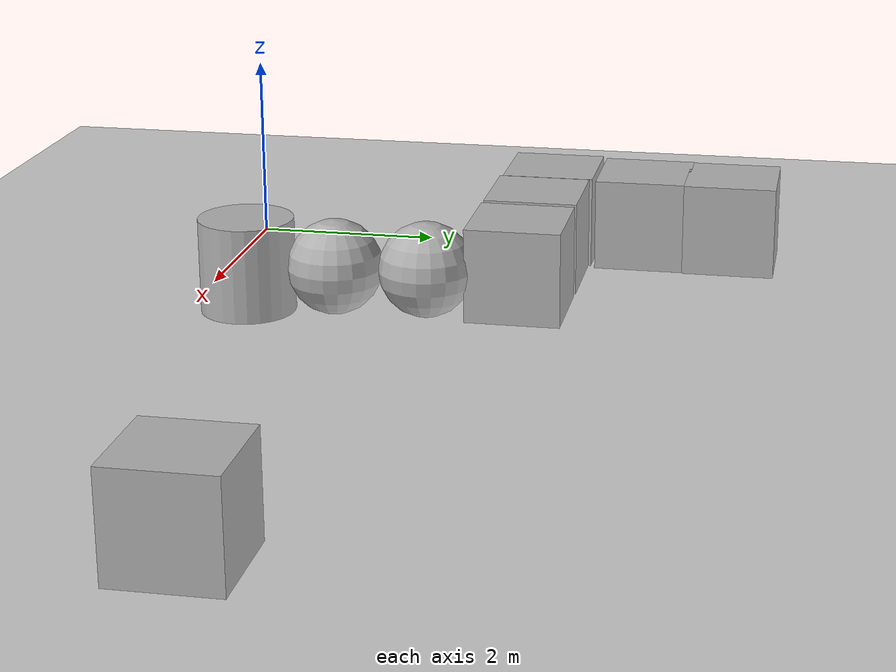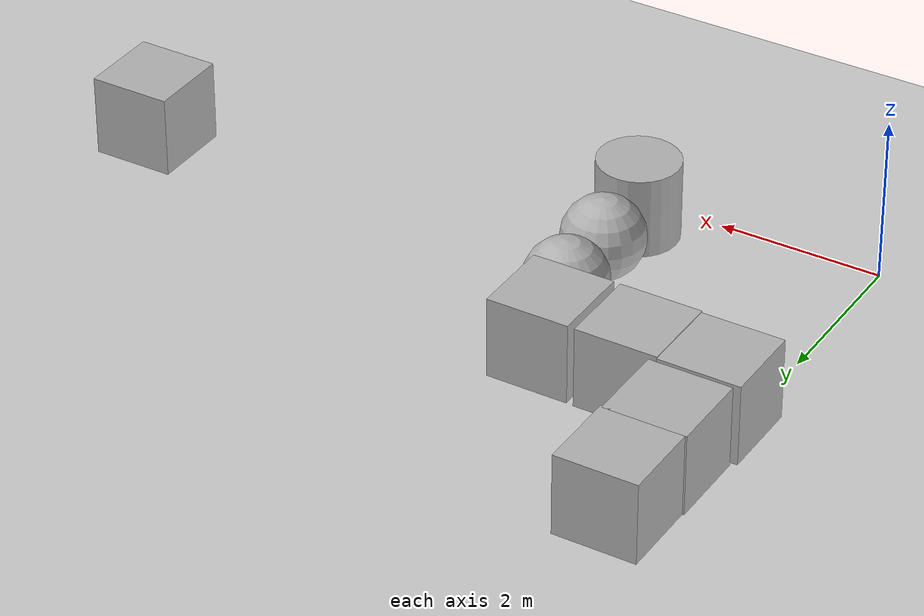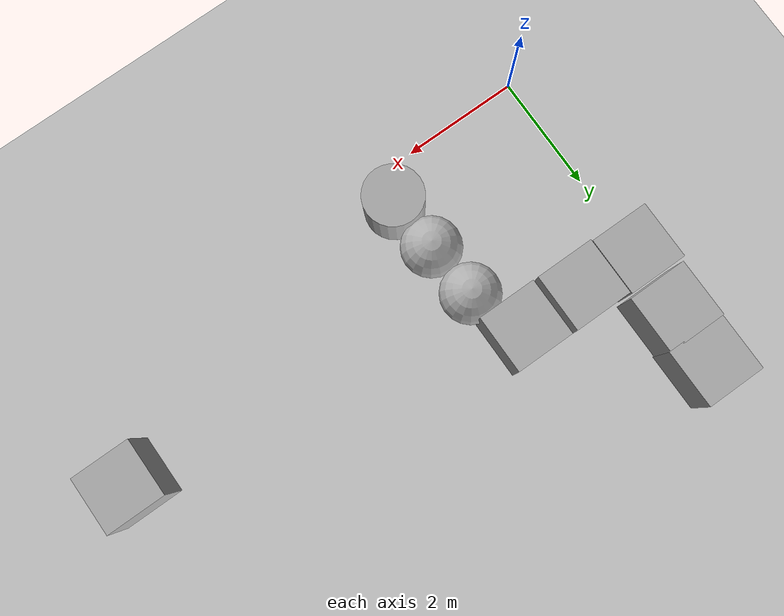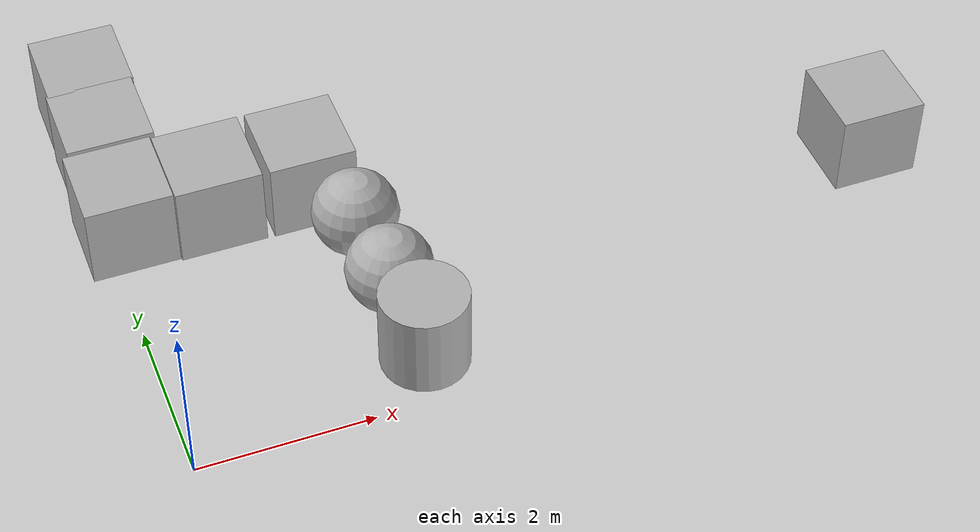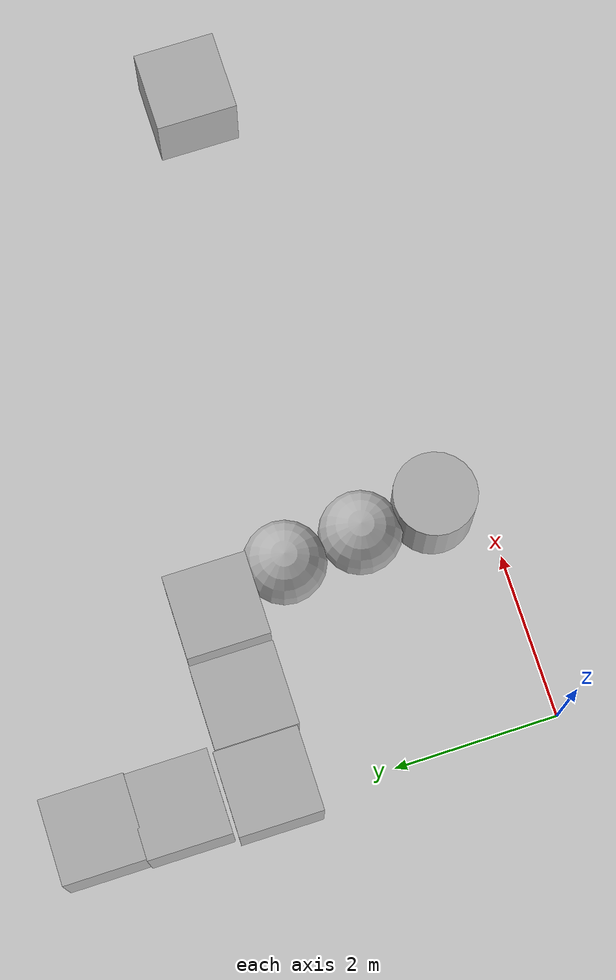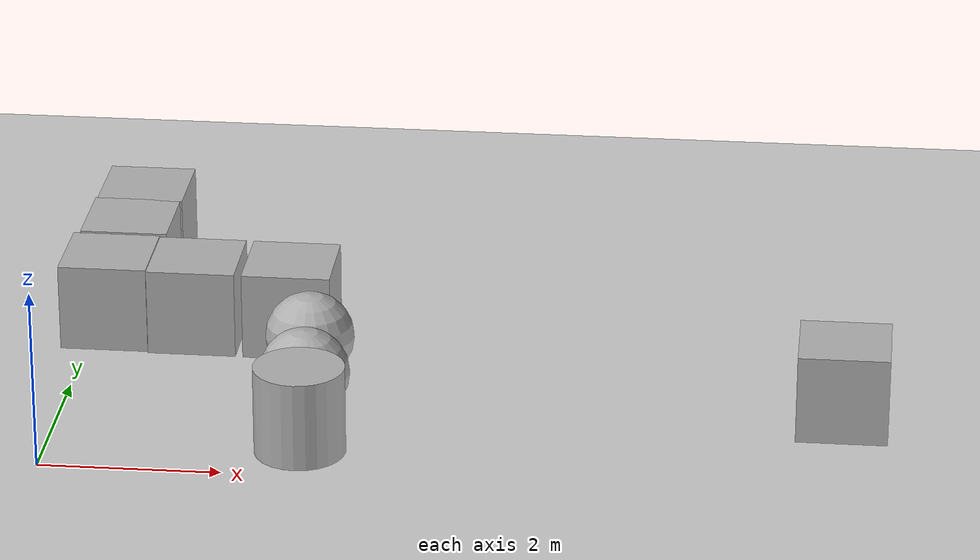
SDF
<sdf version='1.10'>
  <world name='empty'>
    <gui fullscreen="0">
      <plugin filename="KeyPublisher" name="Key Publisher"/>
    </gui>

  <!-- Movement triggers (example: Up Arrow) -->

    <physics name='1ms' type='ignored'>
      <max_step_size>0.001</max_step_size>
      <real_time_factor>1</real_time_factor>
      <real_time_update_rate>1000</real_time_update_rate>
    </physics>
    <plugin name='gz::sim::systems::Physics' filename='gz-sim-physics-system'/>
    <plugin name='gz::sim::systems::UserCommands' filename='gz-sim-user-commands-system'/>
    <plugin name='gz::sim::systems::SceneBroadcaster' filename='gz-sim-scene-broadcaster-system'/>
    <plugin name='gz::sim::systems::Contact' filename='gz-sim-contact-system'/>

    <gravity>0 0 -9.8000000000000007</gravity>
    <magnetic_field>5.5644999999999998e-06 2.2875799999999999e-05 -4.2388400000000002e-05</magnetic_field>
    <atmosphere type='adiabatic'/>
    <scene>
      <ambient>0.400000006 0.400000006 0.400000006 1</ambient>
      <background>0.699999988 0.699999988 0.699999988 1</background>
      <shadows>true</shadows>
    </scene>
    <model name='ground_plane'>
      <static>true</static>
      <link name='link'>
        <collision name='collision'>
          <geometry>
            <plane>
              <normal>0 0 1</normal>
              <size>100 100</size>
            </plane>
          </geometry>
          <surface>
            <friction>
              <ode/>
            </friction>
            <bounce/>
            <contact/>
          </surface>
        </collision>
        <visual name='visual'>
          <geometry>
            <plane>
              <normal>0 0 1</normal>
              <size>100 100</size>
            </plane>
          </geometry>
          <material>
            <ambient>0.800000012 0.800000012 0.800000012 1</ambient>
            <diffuse>0.800000012 0.800000012 0.800000012 1</diffuse>
            <specular>0.800000012 0.800000012 0.800000012 1</specular>
          </material>
        </visual>
        <pose>0 0 0 0 0 0</pose>
        <inertial>
          <pose>0 0 0 0 0 0</pose>
          <mass>1</mass>
          <inertia>
            <ixx>1</ixx>
            <ixy>0</ixy>
            <ixz>0</ixz>
            <iyy>1</iyy>
            <iyz>0</iyz>
            <izz>1</izz>
          </inertia>
        </inertial>
        <enable_wind>false</enable_wind>
      </link>
      <pose>0 0 0 0 0 0</pose>
      <self_collide>false</self_collide>
    </model>
    <model name='box'>
      <pose>0.28821133311123948 5.4884715846028032 0.5 0 0 0</pose>
      <link name='box_link'>
        <inertial>
          <inertia>
            <ixx>0.16666</ixx>
            <ixy>0</ixy>
            <ixz>0</ixz>
            <iyy>0.16666</iyy>
            <iyz>0</iyz>
            <izz>0.16666</izz>
          </inertia>
          <mass>1</mass>
          <pose>0 0 0 0 0 0</pose>
        </inertial>
        <collision name='box_collision'>
          <geometry>
            <box>
              <size>1 1 1</size>
            </box>
          </geometry>
          <surface>
            <friction>
              <ode/>
            </friction>
            <bounce/>
            <contact/>
          </surface>
        </collision>
        <visual name='box_visual'>
          <geometry>
            <box>
              <size>1 1 1</size>
            </box>
          </geometry>
          <material>
            <ambient>0.300000012 0.300000012 0.300000012 1</ambient>
            <diffuse>0.699999988 0.699999988 0.699999988 1</diffuse>
            <specular>1 1 1 1</specular>
          </material>
        </visual>
        <pose>0 0 0 0 0 0</pose>
        <enable_wind>false</enable_wind>
      </link>
      <static>false</static>
      <self_collide>false</self_collide>
    </model>
    <model name='box_0'>
      <pose>0.26720608104949495 4.5150865594517988 0.5 0 0 0</pose>
      <link name='box_link'>
        <inertial>
          <inertia>
            <ixx>0.16666</ixx>
            <ixy>0</ixy>
            <ixz>0</ixz>
            <iyy>0.16666</iyy>
            <iyz>0</iyz>
            <izz>0.16666</izz>
          </inertia>
          <mass>1</mass>
          <pose>0 0 0 0 0 0</pose>
        </inertial>
        <collision name='box_collision'>
          <geometry>
            <box>
              <size>1 1 1</size>
            </box>
          </geometry>
          <surface>
            <friction>
              <ode/>
            </friction>
            <bounce/>
            <contact/>
          </surface>
        </collision>
        <visual name='box_visual'>
          <geometry>
            <box>
              <size>1 1 1</size>
            </box>
          </geometry>
          <material>
            <ambient>0.300000012 0.300000012 0.300000012 1</ambient>
            <diffuse>0.699999988 0.699999988 0.699999988 1</diffuse>
            <specular>1 1 1 1</specular>
          </material>
        </visual>
        <pose>0 0 0 0 0 0</pose>
        <enable_wind>false</enable_wind>
      </link>
      <static>false</static>
      <self_collide>false</self_collide>
    </model>
    <model name='box_1'>
      <pose>0.20029204193367267 3.4662636286200028 0.5 0 0 0</pose>
      <link name='box_link'>
        <inertial>
          <inertia>
            <ixx>0.16666</ixx>
            <ixy>0</ixy>
            <ixz>0</ixz>
            <iyy>0.16666</iyy>
            <iyz>0</iyz>
            <izz>0.16666</izz>
          </inertia>
          <mass>1</mass>
          <pose>0 0 0 0 0 0</pose>
        </inertial>
        <collision name='box_collision'>
          <geometry>
            <box>
              <size>1 1 1</size>
            </box>
          </geometry>
          <surface>
            <friction>
              <ode/>
            </friction>
            <bounce/>
            <contact/>
          </surface>
        </collision>
        <visual name='box_visual'>
          <geometry>
            <box>
              <size>1 1 1</size>
            </box>
          </geometry>
          <material>
            <ambient>0.300000012 0.300000012 0.300000012 1</ambient>
            <diffuse>0.699999988 0.699999988 0.699999988 1</diffuse>
            <specular>1 1 1 1</specular>
          </material>
        </visual>
        <pose>0 0 0 0 0 0</pose>
        <enable_wind>false</enable_wind>
      </link>
      <static>false</static>
      <self_collide>false</self_collide>
    </model>
    <model name='box_2'>
      <pose>1.208863190612119 3.4366423428451744 0.5 0 0 0</pose>
      <link name='box_link'>
        <inertial>
          <inertia>
            <ixx>0.16666</ixx>
            <ixy>0</ixy>
            <ixz>0</ixz>
            <iyy>0.16666</iyy>
            <iyz>0</iyz>
            <izz>0.16666</izz>
          </inertia>
          <mass>1</mass>
          <pose>0 0 0 0 0 0</pose>
        </inertial>
        <collision name='box_collision'>
          <geometry>
            <box>
              <size>1 1 1</size>
            </box>
          </geometry>
          <surface>
            <friction>
              <ode/>
            </friction>
            <bounce/>
            <contact/>
          </surface>
        </collision>
        <visual name='box_visual'>
          <geometry>
            <box>
              <size>1 1 1</size>
            </box>
          </geometry>
          <material>
            <ambient>0.300000012 0.300000012 0.300000012 1</ambient>
            <diffuse>0.699999988 0.699999988 0.699999988 1</diffuse>
            <specular>1 1 1 1</specular>
          </material>
        </visual>
        <pose>0 0 0 0 0 0</pose>
        <enable_wind>false</enable_wind>
      </link>
      <static>false</static>
      <self_collide>false</self_collide>
    </model>
    <model name='box_3'>
      <pose>2.2932777128885764 3.4294730661812629 0.5 0 0 0</pose>
      <link name='box_link'>
        <inertial>
          <inertia>
            <ixx>0.16666</ixx>
            <ixy>0</ixy>
            <ixz>0</ixz>
            <iyy>0.16666</iyy>
            <iyz>0</iyz>
            <izz>0.16666</izz>
          </inertia>
          <mass>1</mass>
          <pose>0 0 0 0 0 0</pose>
        </inertial>
        <collision name='box_collision'>
          <geometry>
            <box>
              <size>1 1 1</size>
            </box>
          </geometry>
          <surface>
            <friction>
              <ode/>
            </friction>
            <bounce/>
            <contact/>
          </surface>
        </collision>
        <visual name='box_visual'>
          <geometry>
            <box>
              <size>1 1 1</size>
            </box>
          </geometry>
          <material>
            <ambient>0.300000012 0.300000012 0.300000012 1</ambient>
            <diffuse>0.699999988 0.699999988 0.699999988 1</diffuse>
            <specular>1 1 1 1</specular>
          </material>
        </visual>
        <pose>0 0 0 0 0 0</pose>
        <enable_wind>false</enable_wind>
      </link>
      <static>false</static>
      <self_collide>false</self_collide>
    </model>
    <model name='sphere'>
      <pose>2.6254363718911957 2.5057435349630599 0.5 0 0 0</pose>
      <link name='sphere_link'>
        <inertial>
          <inertia>
            <ixx>0.10000000000000001</ixx>
            <ixy>0</ixy>
            <ixz>0</ixz>
            <iyy>0.10000000000000001</iyy>
            <iyz>0</iyz>
            <izz>0.10000000000000001</izz>
          </inertia>
          <mass>1</mass>
          <pose>0 0 0 0 0 0</pose>
        </inertial>
        <collision name='sphere_collision'>
          <geometry>
            <sphere>
              <radius>0.5</radius>
            </sphere>
          </geometry>
          <surface>
            <friction>
              <ode/>
            </friction>
            <bounce/>
            <contact/>
          </surface>
        </collision>
        <visual name='sphere_visual'>
          <geometry>
            <sphere>
              <radius>0.5</radius>
            </sphere>
          </geometry>
          <material>
            <ambient>0.300000012 0.300000012 0.300000012 1</ambient>
            <diffuse>0.699999988 0.699999988 0.699999988 1</diffuse>
            <specular>1 1 1 1</specular>
          </material>
        </visual>
        <pose>0 0 0 0 0 0</pose>
        <enable_wind>false</enable_wind>
      </link>
      <static>false</static>
      <self_collide>false</self_collide>
    </model>
    <model name='sphere_0'>
      <pose>2.6948896906608688 1.5517691866384395 0.5 0 0 0</pose>
      <link name='sphere_link'>
        <inertial>
          <inertia>
            <ixx>0.10000000000000001</ixx>
            <ixy>0</ixy>
            <ixz>0</ixz>
            <iyy>0.10000000000000001</iyy>
            <iyz>0</iyz>
            <izz>0.10000000000000001</izz>
          </inertia>
          <mass>1</mass>
          <pose>0 0 0 0 0 0</pose>
        </inertial>
        <collision name='sphere_collision'>
          <geometry>
            <sphere>
              <radius>0.5</radius>
            </sphere>
          </geometry>
          <surface>
            <friction>
              <ode/>
            </friction>
            <bounce/>
            <contact/>
          </surface>
        </collision>
        <visual name='sphere_visual'>
          <geometry>
            <sphere>
              <radius>0.5</radius>
            </sphere>
          </geometry>
          <material>
            <ambient>0.300000012 0.300000012 0.300000012 1</ambient>
            <diffuse>0.699999988 0.699999988 0.699999988 1</diffuse>
            <specular>1 1 1 1</specular>
          </material>
        </visual>
        <pose>0 0 0 0 0 0</pose>
        <enable_wind>false</enable_wind>
      </link>
      <static>false</static>
      <self_collide>false</self_collide>
    </model>
    <model name='cylinder'>
      <pose>2.7644242510689327 0.62629273344597247 0.5 0 0 0</pose>
      <link name='cylinder_link'>
        <inertial>
          <inertia>
            <ixx>0.14580000000000001</ixx>
            <ixy>0</ixy>
            <ixz>0</ixz>
            <iyy>0.14580000000000001</iyy>
            <iyz>0</iyz>
            <izz>0.125</izz>
          </inertia>
          <mass>1</mass>
          <pose>0 0 0 0 0 0</pose>
        </inertial>
        <collision name='cylinder_collision'>
          <geometry>
            <cylinder>
              <radius>0.5</radius>
              <length>1</length>
            </cylinder>
          </geometry>
          <surface>
            <friction>
              <ode/>
            </friction>
            <bounce/>
            <contact/>
          </surface>
        </collision>
        <visual name='cylinder_visual'>
          <geometry>
            <cylinder>
              <radius>0.5</radius>
              <length>1</length>
            </cylinder>
          </geometry>
          <material>
            <ambient>0.300000012 0.300000012 0.300000012 1</ambient>
            <diffuse>0.699999988 0.699999988 0.699999988 1</diffuse>
            <specular>1 1 1 1</specular>
          </material>
        </visual>
        <pose>0 0 0 0 0 0</pose>
        <enable_wind>false</enable_wind>
      </link>
      <static>false</static>
      <self_collide>false</self_collide>
    </model>
    <model name='box_4'>
      <pose>8.5785842146580009 1.8720921420177363 0.5 0 0 0</pose>
      <link name='box_link'>
        <inertial>
          <inertia>
            <ixx>0.16666</ixx>
            <ixy>0</ixy>
            <ixz>0</ixz>
            <iyy>0.16666</iyy>
            <iyz>0</iyz>
            <izz>0.16666</izz>
          </inertia>
          <mass>1</mass>
          <pose>0 0 0 0 0 0</pose>
        </inertial>
        <collision name='box_collision'>
          <geometry>
            <box>
              <size>1 1 1</size>
            </box>
          </geometry>
          <surface>
            <friction>
              <ode/>
            </friction>
            <bounce/>
            <contact/>
          </surface>
        </collision>
        <visual name='box_visual'>
          <geometry>
            <box>
              <size>1 1 1</size>
            </box>
          </geometry>
          <material>
            <ambient>0.300000012 0.300000012 0.300000012 1</ambient>
            <diffuse>0.699999988 0.699999988 0.699999988 1</diffuse>
            <specular>1 1 1 1</specular>
          </material>
        </visual>
        <pose>0 0 0 0 0 0</pose>
        <enable_wind>false</enable_wind>
      </link>
      <static>false</static>
      <self_collide>false</self_collide>
    </model>
    <light name='sun' type='directional'>
      <pose>0 0 10 0 0 0</pose>
      <cast_shadows>true</cast_shadows>
      <intensity>1</intensity>
      <direction>-0.5 0.10000000000000001 -0.90000000000000002</direction>
      <diffuse>0.800000012 0.800000012 0.800000012 1</diffuse>
      <specular>0.200000003 0.200000003 0.200000003 1</specular>
      <attenuation>
        <range>1000</range>
        <linear>0.01</linear>
        <constant>0.90000000000000002</constant>
        <quadratic>0.001</quadratic>
      </attenuation>
      <spot>
        <inner_angle>0</inner_angle>
        <outer_angle>0</outer_angle>
        <falloff>0</falloff>
      </spot>
    </light>
  </world>
</sdf>
